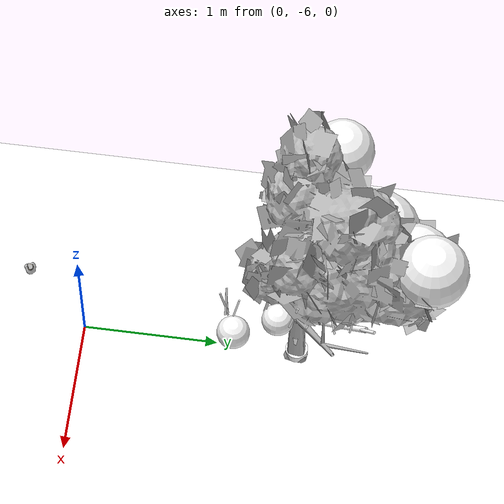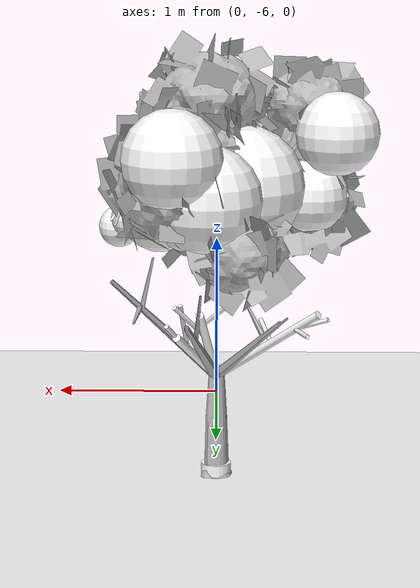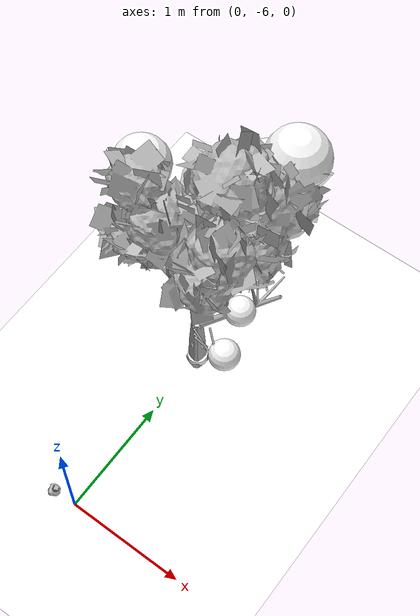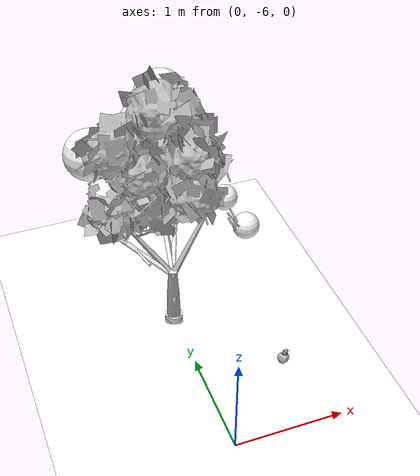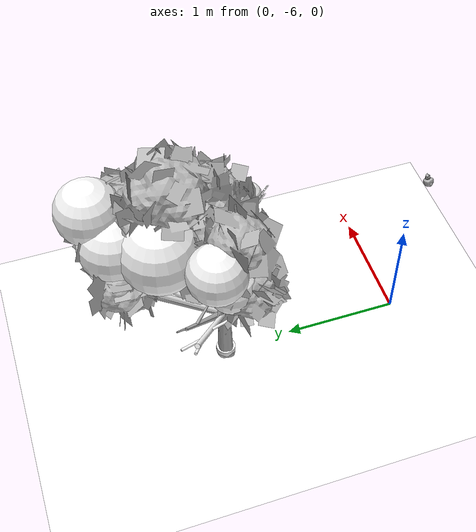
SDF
<sdf version="1.11">
 <world name="peach_orchard">
  <model name="ground">
   <static>true</static>
   <link name="link">
    <visual name="soil">
     <geometry><plane><normal>0 0 1</normal><size>32 22</size></plane></geometry>
     <material>
      <ambient>1 1 1 1</ambient>
      <diffuse>1 1 1 1</diffuse>
      <specular>0.1 0.1 0.1 1</specular>
      <pbr>
       <metal>
        <albedo_map>textures/soil_albedo.png</albedo_map>
        <normal_map type="tangent">textures/soil_normal.png</normal_map>
        <roughness>0.95</roughness>
        <metalness>0</metalness>
       </metal>
      </pbr>
     </material>
    </visual>
    <collision name="c_soil">
     <geometry><plane><normal>0 0 1</normal><size>32 22</size></plane></geometry>
    </collision>
   </link>
  </model>
  <model name="tree_r2_t1">
   <pose>0 -4.4 0 0 0 0</pose>
   <static>true</static>
   <link name="link">
    <visual name="tree_mesh">
     <pose>0 0 0 0 0 -0.182898</pose>
     <geometry>
      <mesh><uri>model://peach_sim/meshes/peach_tree_b.glb</uri><scale>1.07266 1.07266 1.07266</scale></mesh>
     </geometry>
    </visual>
    <visual name="trunk_0">
     <pose>0 0 0.170287 0 0 0</pose>
     <geometry><cylinder><radius>0.057545</radius><length>0.340573</length></cylinder></geometry>
     <material>
      <ambient>1 1 1 1</ambient>
      <diffuse>1 1 1 1</diffuse>
      <specular>0.1 0.1 0.1 1</specular>
      <pbr>
       <metal>
        <albedo_map>textures/bark_albedo.png</albedo_map>
        <normal_map type="tangent">textures/bark_normal.png</normal_map>
        <roughness>0.9</roughness>
        <metalness>0</metalness>
       </metal>
      </pbr>
     </material>
    </visual>
    <collision name="c_trunk_0">
     <pose>0 0 0.170287 0 0 0</pose>
     <geometry><cylinder><radius>0.057545</radius><length>0.340573</length></cylinder></geometry>
    </collision>
    <visual name="trunk_1">
     <pose>0 0 0.479898 0 0 0</pose>
     <geometry><cylinder><radius>0.0414324</radius><length>0.278651</length></cylinder></geometry>
     <material>
      <ambient>1 1 1 1</ambient>
      <diffuse>1 1 1 1</diffuse>
      <specular>0.1 0.1 0.1 1</specular>
      <pbr>
       <metal>
        <albedo_map>textures/bark_albedo.png</albedo_map>
        <normal_map type="tangent">textures/bark_normal.png</normal_map>
        <roughness>0.9</roughness>
        <metalness>0</metalness>
       </metal>
      </pbr>
     </material>
    </visual>
    <collision name="c_trunk_1">
     <pose>0 0 0.479898 0 0 0</pose>
     <geometry><cylinder><radius>0.0414324</radius><length>0.278651</length></cylinder></geometry>
    </collision>
    <visual name="root_flare">
     <pose>0 0 0.035 0 0 0</pose>
     <geometry><cylinder><radius>0.0834402</radius><length>0.07</length></cylinder></geometry>
     <material>
      <ambient>1 1 1 1</ambient>
      <diffuse>1 1 1 1</diffuse>
      <specular>0.1 0.1 0.1 1</specular>
      <pbr>
       <metal>
        <albedo_map>textures/bark_albedo.png</albedo_map>
        <normal_map type="tangent">textures/bark_normal.png</normal_map>
        <roughness>0.95</roughness>
        <metalness>0</metalness>
       </metal>
      </pbr>
     </material>
    </visual>
    <visual name="scaffold_0">
     <pose>0.0425916 0.338999 0.829581 0 0.920498 1.44581</pose>
     <geometry><cylinder><radius>0.022</radius><length>0.858556</length></cylinder></geometry>
     <material>
      <ambient>1 1 1 1</ambient>
      <diffuse>1 1 1 1</diffuse>
      <specular>0.1 0.1 0.1 1</specular>
      <pbr>
       <metal>
        <albedo_map>textures/bark_albedo.png</albedo_map>
        <normal_map type="tangent">textures/bark_normal.png</normal_map>
        <roughness>0.9</roughness>
        <metalness>0</metalness>
       </metal>
      </pbr>
     </material>
    </visual>
    <collision name="c_scaffold_0">
     <pose>0.0425916 0.338999 0.829581 0 0.920498 1.44581</pose>
     <geometry><cylinder><radius>0.022</radius><length>0.858556</length></cylinder></geometry>
    </collision>
    <visual name="branchlet_0_0">
     <pose>0.136265 0.513864 1.00876 0 0.826578 0.674602</pose>
     <geometry><cylinder><radius>0.012</radius><length>0.277514</length></cylinder></geometry>
     <material>
      <ambient>1 1 1 1</ambient>
      <diffuse>1 1 1 1</diffuse>
      <specular>0.1 0.1 0.1 1</specular>
      <pbr>
       <metal>
        <albedo_map>textures/bark_albedo.png</albedo_map>
        <normal_map type="tangent">textures/bark_normal.png</normal_map>
        <roughness>0.9</roughness>
        <metalness>0</metalness>
       </metal>
      </pbr>
     </material>
    </visual>
    <visual name="branchlet_0_1">
     <pose>-0.0124506 0.659524 1.09874 0 0.931263 2.34027</pose>
     <geometry><cylinder><radius>0.012</radius><length>0.30226</length></cylinder></geometry>
     <material>
      <ambient>1 1 1 1</ambient>
      <diffuse>1 1 1 1</diffuse>
      <specular>0.1 0.1 0.1 1</specular>
      <pbr>
       <metal>
        <albedo_map>textures/bark_albedo.png</albedo_map>
        <normal_map type="tangent">textures/bark_normal.png</normal_map>
        <roughness>0.9</roughness>
        <metalness>0</metalness>
       </metal>
      </pbr>
     </material>
    </visual>
    <visual name="scaffold_1">
     <pose>0.103659 0.256051 0.746721 0 1.00086 1.18613</pose>
     <geometry><cylinder><radius>0.022</radius><length>0.656197</length></cylinder></geometry>
     <material>
      <ambient>1 1 1 1</ambient>
      <diffuse>1 1 1 1</diffuse>
      <specular>0.1 0.1 0.1 1</specular>
      <pbr>
       <metal>
        <albedo_map>textures/bark_albedo.png</albedo_map>
        <normal_map type="tangent">textures/bark_normal.png</normal_map>
        <roughness>0.9</roughness>
        <metalness>0</metalness>
       </metal>
      </pbr>
     </material>
    </visual>
    <collision name="c_scaffold_1">
     <pose>0.103659 0.256051 0.746721 0 1.00086 1.18613</pose>
     <geometry><cylinder><radius>0.022</radius><length>0.656197</length></cylinder></geometry>
    </collision>
    <visual name="branchlet_1_0">
     <pose>0.216636 0.502195 0.933999 0 0.895356 1.03662</pose>
     <geometry><cylinder><radius>0.012</radius><length>0.21257</length></cylinder></geometry>
     <material>
      <ambient>1 1 1 1</ambient>
      <diffuse>1 1 1 1</diffuse>
      <specular>0.1 0.1 0.1 1</specular>
      <pbr>
       <metal>
        <albedo_map>textures/bark_albedo.png</albedo_map>
        <normal_map type="tangent">textures/bark_normal.png</normal_map>
        <roughness>0.9</roughness>
        <metalness>0</metalness>
       </metal>
      </pbr>
     </material>
    </visual>
    <visual name="branchlet_1_1">
     <pose>0.169725 0.439462 0.962168 0 0.474524 1.29603</pose>
     <geometry><cylinder><radius>0.012</radius><length>0.302796</length></cylinder></geometry>
     <material>
      <ambient>1 1 1 1</ambient>
      <diffuse>1 1 1 1</diffuse>
      <specular>0.1 0.1 0.1 1</specular>
      <pbr>
       <metal>
        <albedo_map>textures/bark_albedo.png</albedo_map>
        <normal_map type="tangent">textures/bark_normal.png</normal_map>
        <roughness>0.9</roughness>
        <metalness>0</metalness>
       </metal>
      </pbr>
     </material>
    </visual>
    <visual name="scaffold_2">
     <pose>-0.270267 0.187478 0.793004 0 0.974351 2.53512</pose>
     <geometry><cylinder><radius>0.022</radius><length>0.795142</length></cylinder></geometry>
     <material>
      <ambient>1 1 1 1</ambient>
      <diffuse>1 1 1 1</diffuse>
      <specular>0.1 0.1 0.1 1</specular>
      <pbr>
       <metal>
        <albedo_map>textures/bark_albedo.png</albedo_map>
        <normal_map type="tangent">textures/bark_normal.png</normal_map>
        <roughness>0.9</roughness>
        <metalness>0</metalness>
       </metal>
      </pbr>
     </material>
    </visual>
    <collision name="c_scaffold_2">
     <pose>-0.270267 0.187478 0.793004 0 0.974351 2.53512</pose>
     <geometry><cylinder><radius>0.022</radius><length>0.795142</length></cylinder></geometry>
    </collision>
    <visual name="branchlet_2_0">
     <pose>-0.270787 0.0496463 0.83948 0 1.40955 -1.41278</pose>
     <geometry><cylinder><radius>0.012</radius><length>0.318788</length></cylinder></geometry>
     <material>
      <ambient>1 1 1 1</ambient>
      <diffuse>1 1 1 1</diffuse>
      <specular>0.1 0.1 0.1 1</specular>
      <pbr>
       <metal>
        <albedo_map>textures/bark_albedo.png</albedo_map>
        <normal_map type="tangent">textures/bark_normal.png</normal_map>
        <roughness>0.9</roughness>
        <metalness>0</metalness>
       </metal>
      </pbr>
     </material>
    </visual>
    <visual name="branchlet_2_1">
     <pose>-0.449534 0.391661 0.921175 0 1.52547 1.85985</pose>
     <geometry><cylinder><radius>0.012</radius><length>0.210077</length></cylinder></geometry>
     <material>
      <ambient>1 1 1 1</ambient>
      <diffuse>1 1 1 1</diffuse>
      <specular>0.1 0.1 0.1 1</specular>
      <pbr>
       <metal>
        <albedo_map>textures/bark_albedo.png</albedo_map>
        <normal_map type="tangent">textures/bark_normal.png</normal_map>
        <roughness>0.9</roughness>
        <metalness>0</metalness>
       </metal>
      </pbr>
     </material>
    </visual>
    <visual name="branchlet_2_2">
     <pose>-0.507842 0.349707 0.958595 0 1.2063 2.55626</pose>
     <geometry><cylinder><radius>0.012</radius><length>0.214034</length></cylinder></geometry>
     <material>
      <ambient>1 1 1 1</ambient>
      <diffuse>1 1 1 1</diffuse>
      <specular>0.1 0.1 0.1 1</specular>
      <pbr>
       <metal>
        <albedo_map>textures/bark_albedo.png</albedo_map>
        <normal_map type="tangent">textures/bark_normal.png</normal_map>
        <roughness>0.9</roughness>
        <metalness>0</metalness>
       </metal>
      </pbr>
     </material>
    </visual>
    <visual name="canopy_0">
     <pose>0.286188 0.730087 1.63494 0 0 0</pose>
     <geometry><sphere><radius>0.194819</radius></sphere></geometry>
     <material>
      <ambient>1 1 1 1</ambient>
      <diffuse>1 1 1 1</diffuse>
      <specular>0.1 0.1 0.1 1</specular>
      <pbr>
       <metal>
        <albedo_map>textures/leaf_albedo.png</albedo_map>
        <normal_map type="tangent">textures/leaf_normal.png</normal_map>
        <roughness>0.85</roughness>
        <metalness>0</metalness>
       </metal>
      </pbr>
     </material>
    </visual>
    <collision name="c_canopy_0">
     <pose>0.286188 0.730087 1.63494 0 0 0</pose>
     <geometry><sphere><radius>0.194819</radius></sphere></geometry>
    </collision>
    <visual name="canopy_1">
     <pose>-0.137182 0.50841 1.73183 0 0 0</pose>
     <geometry><sphere><radius>0.318168</radius></sphere></geometry>
     <material>
      <ambient>1 1 1 1</ambient>
      <diffuse>1 1 1 1</diffuse>
      <specular>0.1 0.1 0.1 1</specular>
      <pbr>
       <metal>
        <albedo_map>textures/leaf_albedo.png</albedo_map>
        <normal_map type="tangent">textures/leaf_normal.png</normal_map>
        <roughness>0.85</roughness>
        <metalness>0</metalness>
       </metal>
      </pbr>
     </material>
    </visual>
    <collision name="c_canopy_1">
     <pose>-0.137182 0.50841 1.73183 0 0 0</pose>
     <geometry><sphere><radius>0.318168</radius></sphere></geometry>
    </collision>
    <visual name="canopy_2">
     <pose>-0.506457 0.0751825 1.60078 0 0 0</pose>
     <geometry><sphere><radius>0.200631</radius></sphere></geometry>
     <material>
      <ambient>1 1 1 1</ambient>
      <diffuse>1 1 1 1</diffuse>
      <specular>0.1 0.1 0.1 1</specular>
      <pbr>
       <metal>
        <albedo_map>textures/leaf_albedo.png</albedo_map>
        <normal_map type="tangent">textures/leaf_normal.png</normal_map>
        <roughness>0.85</roughness>
        <metalness>0</metalness>
       </metal>
      </pbr>
     </material>
    </visual>
    <collision name="c_canopy_2">
     <pose>-0.506457 0.0751825 1.60078 0 0 0</pose>
     <geometry><sphere><radius>0.200631</radius></sphere></geometry>
    </collision>
    <visual name="canopy_3">
     <pose>0.147283 0.792902 1.63411 0 0 0</pose>
     <geometry><sphere><radius>0.180071</radius></sphere></geometry>
     <material>
      <ambient>1 1 1 1</ambient>
      <diffuse>1 1 1 1</diffuse>
      <specular>0.1 0.1 0.1 1</specular>
      <pbr>
       <metal>
        <albedo_map>textures/leaf_albedo.png</albedo_map>
        <normal_map type="tangent">textures/leaf_normal.png</normal_map>
        <roughness>0.85</roughness>
        <metalness>0</metalness>
       </metal>
      </pbr>
     </material>
    </visual>
    <visual name="canopy_4">
     <pose>0.0470145 0.804629 1.7154 0 0 0</pose>
     <geometry><sphere><radius>0.280003</radius></sphere></geometry>
     <material>
      <ambient>1 1 1 1</ambient>
      <diffuse>1 1 1 1</diffuse>
      <specular>0.1 0.1 0.1 1</specular>
      <pbr>
       <metal>
        <albedo_map>textures/leaf_albedo.png</albedo_map>
        <normal_map type="tangent">textures/leaf_normal.png</normal_map>
        <roughness>0.85</roughness>
        <metalness>0</metalness>
       </metal>
      </pbr>
     </material>
    </visual>
    <visual name="canopy_5">
     <pose>-0.636681 0.215383 1.96 0 0 0</pose>
     <geometry><sphere><radius>0.22353</radius></sphere></geometry>
     <material>
      <ambient>1 1 1 1</ambient>
      <diffuse>1 1 1 1</diffuse>
      <specular>0.1 0.1 0.1 1</specular>
      <pbr>
       <metal>
        <albedo_map>textures/leaf_albedo.png</albedo_map>
        <normal_map type="tangent">textures/leaf_normal.png</normal_map>
        <roughness>0.85</roughness>
        <metalness>0</metalness>
       </metal>
      </pbr>
     </material>
    </visual>
    <visual name="canopy_6">
     <pose>0.22001 0.926387 1.94066 0 0 0</pose>
     <geometry><sphere><radius>0.25661</radius></sphere></geometry>
     <material>
      <ambient>1 1 1 1</ambient>
      <diffuse>1 1 1 1</diffuse>
      <specular>0.1 0.1 0.1 1</specular>
      <pbr>
       <metal>
        <albedo_map>textures/leaf_albedo.png</albedo_map>
        <normal_map type="tangent">textures/leaf_normal.png</normal_map>
        <roughness>0.85</roughness>
        <metalness>0</metalness>
       </metal>
      </pbr>
     </material>
    </visual>
    <visual name="canopy_7">
     <pose>0.188265 0.705098 1.78611 0 0 0</pose>
     <geometry><sphere><radius>0.194952</radius></sphere></geometry>
     <material>
      <ambient>1 1 1 1</ambient>
      <diffuse>1 1 1 1</diffuse>
      <specular>0.1 0.1 0.1 1</specular>
      <pbr>
       <metal>
        <albedo_map>textures/leaf_albedo.png</albedo_map>
        <normal_map type="tangent">textures/leaf_normal.png</normal_map>
        <roughness>0.85</roughness>
        <metalness>0</metalness>
       </metal>
      </pbr>
     </material>
    </visual>
    <visual name="foliage_0">
     <pose>0.464719 -0.094649 1.44031 0 0 0</pose>
     <geometry><sphere><radius>0.113757</radius></sphere></geometry>
     <material>
      <ambient>1 1 1 1</ambient>
      <diffuse>1 1 1 1</diffuse>
      <specular>0.1 0.1 0.1 1</specular>
      <pbr>
       <metal>
        <albedo_map>textures/leaf_albedo.png</albedo_map>
        <normal_map type="tangent">textures/leaf_normal.png</normal_map>
        <roughness>0.85</roughness>
        <metalness>0</metalness>
       </metal>
      </pbr>
     </material>
    </visual>
    <visual name="foliage_4">
     <pose>0.54722 -0.395447 1.33033 0 0 0</pose>
     <geometry><sphere><radius>0.116796</radius></sphere></geometry>
     <material>
      <ambient>1 1 1 1</ambient>
      <diffuse>1 1 1 1</diffuse>
      <specular>0.1 0.1 0.1 1</specular>
      <pbr>
       <metal>
        <albedo_map>textures/leaf_albedo.png</albedo_map>
        <normal_map type="tangent">textures/leaf_normal.png</normal_map>
        <roughness>0.85</roughness>
        <metalness>0</metalness>
       </metal>
      </pbr>
     </material>
    </visual>
    <visual name="foliage_8">
     <pose>0.150797 0.211542 1.39017 0 0 0</pose>
     <geometry><sphere><radius>0.0927448</radius></sphere></geometry>
     <material>
      <ambient>1 1 1 1</ambient>
      <diffuse>1 1 1 1</diffuse>
      <specular>0.1 0.1 0.1 1</specular>
      <pbr>
       <metal>
        <albedo_map>textures/leaf_albedo.png</albedo_map>
        <normal_map type="tangent">textures/leaf_normal.png</normal_map>
        <roughness>0.85</roughness>
        <metalness>0</metalness>
       </metal>
      </pbr>
     </material>
    </visual>
    <visual name="twig_0">
     <pose>0.526801 0.0215246 1.61952 0 0.364313 2.32415</pose>
     <geometry><cylinder><radius>0.007</radius><length>0.201046</length></cylinder></geometry>
     <material>
      <ambient>1 1 1 1</ambient>
      <diffuse>1 1 1 1</diffuse>
      <specular>0.1 0.1 0.1 1</specular>
      <pbr>
       <metal>
        <albedo_map>textures/bark_albedo.png</albedo_map>
        <normal_map type="tangent">textures/bark_normal.png</normal_map>
        <roughness>0.9</roughness>
        <metalness>0</metalness>
       </metal>
      </pbr>
     </material>
    </visual>
    <visual name="twig_1">
     <pose>0.496465 0.143144 1.61012 0 0.61913 2.62364</pose>
     <geometry><cylinder><radius>0.007</radius><length>0.205004</length></cylinder></geometry>
     <material>
      <ambient>1 1 1 1</ambient>
      <diffuse>1 1 1 1</diffuse>
      <specular>0.1 0.1 0.1 1</specular>
      <pbr>
       <metal>
        <albedo_map>textures/bark_albedo.png</albedo_map>
        <normal_map type="tangent">textures/bark_normal.png</normal_map>
        <roughness>0.9</roughness>
        <metalness>0</metalness>
       </metal>
      </pbr>
     </material>
    </visual>
    <visual name="twig_2">
     <pose>0.511202 0.290485 1.56577 0 0.711603 -2.72697</pose>
     <geometry><cylinder><radius>0.007</radius><length>0.152069</length></cylinder></geometry>
     <material>
      <ambient>1 1 1 1</ambient>
      <diffuse>1 1 1 1</diffuse>
      <specular>0.1 0.1 0.1 1</specular>
      <pbr>
       <metal>
        <albedo_map>textures/bark_albedo.png</albedo_map>
        <normal_map type="tangent">textures/bark_normal.png</normal_map>
        <roughness>0.9</roughness>
        <metalness>0</metalness>
       </metal>
      </pbr>
     </material>
    </visual>
    <visual name="twig_3">
     <pose>0.512291 0.419979 1.55295 0 0.373174 2.72859</pose>
     <geometry><cylinder><radius>0.007</radius><length>0.103391</length></cylinder></geometry>
     <material>
      <ambient>1 1 1 1</ambient>
      <diffuse>1 1 1 1</diffuse>
      <specular>0.1 0.1 0.1 1</specular>
      <pbr>
       <metal>
        <albedo_map>textures/bark_albedo.png</albedo_map>
        <normal_map type="tangent">textures/bark_normal.png</normal_map>
        <roughness>0.9</roughness>
        <metalness>0</metalness>
       </metal>
      </pbr>
     </material>
    </visual>
    <visual name="twig_4">
     <pose>0.438727 -0.393613 1.4514 0 0.474343 2.61727</pose>
     <geometry><cylinder><radius>0.007</radius><length>0.192007</length></cylinder></geometry>
     <material>
      <ambient>1 1 1 1</ambient>
      <diffuse>1 1 1 1</diffuse>
      <specular>0.1 0.1 0.1 1</specular>
      <pbr>
       <metal>
        <albedo_map>textures/bark_albedo.png</albedo_map>
        <normal_map type="tangent">textures/bark_normal.png</normal_map>
        <roughness>0.9</roughness>
        <metalness>0</metalness>
       </metal>
      </pbr>
     </material>
    </visual>
    <visual name="twig_5">
     <pose>0.408524 -0.47699 1.48311 0 0.42059 -2.24174</pose>
     <geometry><cylinder><radius>0.007</radius><length>0.196148</length></cylinder></geometry>
     <material>
      <ambient>1 1 1 1</ambient>
      <diffuse>1 1 1 1</diffuse>
      <specular>0.1 0.1 0.1 1</specular>
      <pbr>
       <metal>
        <albedo_map>textures/bark_albedo.png</albedo_map>
        <normal_map type="tangent">textures/bark_normal.png</normal_map>
        <roughness>0.9</roughness>
        <metalness>0</metalness>
       </metal>
      </pbr>
     </material>
    </visual>
    <visual name="twig_6">
     <pose>0.388808 -0.46003 1.44058 0 0.46345 -2.8718</pose>
     <geometry><cylinder><radius>0.007</radius><length>0.19441</length></cylinder></geometry>
     <material>
      <ambient>1 1 1 1</ambient>
      <diffuse>1 1 1 1</diffuse>
      <specular>0.1 0.1 0.1 1</specular>
      <pbr>
       <metal>
        <albedo_map>textures/bark_albedo.png</albedo_map>
        <normal_map type="tangent">textures/bark_normal.png</normal_map>
        <roughness>0.9</roughness>
        <metalness>0</metalness>
       </metal>
      </pbr>
     </material>
    </visual>
    <visual name="twig_7">
     <pose>0.396371 -0.465425 1.48946 0 0.537362 -3.11915</pose>
     <geometry><cylinder><radius>0.007</radius><length>0.218575</length></cylinder></geometry>
     <material>
      <ambient>1 1 1 1</ambient>
      <diffuse>1 1 1 1</diffuse>
      <specular>0.1 0.1 0.1 1</specular>
      <pbr>
       <metal>
        <albedo_map>textures/bark_albedo.png</albedo_map>
        <normal_map type="tangent">textures/bark_normal.png</normal_map>
        <roughness>0.9</roughness>
        <metalness>0</metalness>
       </metal>
      </pbr>
     </material>
    </visual>
    <visual name="twig_8">
     <pose>0.194106 0.243336 1.49218 0 0.438954 -2.93289</pose>
     <geometry><cylinder><radius>0.007</radius><length>0.12164</length></cylinder></geometry>
     <material>
      <ambient>1 1 1 1</ambient>
      <diffuse>1 1 1 1</diffuse>
      <specular>0.1 0.1 0.1 1</specular>
      <pbr>
       <metal>
        <albedo_map>textures/bark_albedo.png</albedo_map>
        <normal_map type="tangent">textures/bark_normal.png</normal_map>
        <roughness>0.9</roughness>
        <metalness>0</metalness>
       </metal>
      </pbr>
     </material>
    </visual>
    <visual name="twig_9">
     <pose>0.193297 0.0404533 1.53179 0 0.29041 2.63978</pose>
     <geometry><cylinder><radius>0.007</radius><length>0.195672</length></cylinder></geometry>
     <material>
      <ambient>1 1 1 1</ambient>
      <diffuse>1 1 1 1</diffuse>
      <specular>0.1 0.1 0.1 1</specular>
      <pbr>
       <metal>
        <albedo_map>textures/bark_albedo.png</albedo_map>
        <normal_map type="tangent">textures/bark_normal.png</normal_map>
        <roughness>0.9</roughness>
        <metalness>0</metalness>
       </metal>
      </pbr>
     </material>
    </visual>
    <visual name="twig_10">
     <pose>0.163599 -0.179437 1.46482 0 0.72306 -2.96463</pose>
     <geometry><cylinder><radius>0.007</radius><length>0.186991</length></cylinder></geometry>
     <material>
      <ambient>1 1 1 1</ambient>
      <diffuse>1 1 1 1</diffuse>
      <specular>0.1 0.1 0.1 1</specular>
      <pbr>
       <metal>
        <albedo_map>textures/bark_albedo.png</albedo_map>
        <normal_map type="tangent">textures/bark_normal.png</normal_map>
        <roughness>0.9</roughness>
        <metalness>0</metalness>
       </metal>
      </pbr>
     </material>
    </visual>
    <visual name="twig_11">
     <pose>0.20053 -0.3207 1.45401 0 0.297298 2.38007</pose>
     <geometry><cylinder><radius>0.007</radius><length>0.14363</length></cylinder></geometry>
     <material>
      <ambient>1 1 1 1</ambient>
      <diffuse>1 1 1 1</diffuse>
      <specular>0.1 0.1 0.1 1</specular>
      <pbr>
       <metal>
        <albedo_map>textures/bark_albedo.png</albedo_map>
        <normal_map type="tangent">textures/bark_normal.png</normal_map>
        <roughness>0.9</roughness>
        <metalness>0</metalness>
       </metal>
      </pbr>
     </material>
    </visual>
   </link>
  </model>
  <model name="peach_tree_r2_t0_04">
   <pose>0.22 -6.28459 1.28011 0 0.320563 0.419473</pose>
   <static>true</static>
   <link name="bag">
    <visual name="bag_mesh">
     <pose>0 0 0.0484974 0 0 0</pose>
     <geometry>
      <mesh><uri>model://peach_sim/meshes/bagged_peach.glb</uri><scale>1.01122 1.14961 1.10221</scale></mesh>
     </geometry>
    </visual>
    <visual name="body">
     <pose>0 0 0.0304974 0 0 0</pose>
     <geometry><ellipsoid><radii>0.0379207 0.0298897 0.0329371</radii></ellipsoid></geometry>
     <material>
      <ambient>1 1 1 1</ambient>
      <diffuse>1 1 1 1</diffuse>
      <specular>0.1 0.1 0.1 1</specular>
      <pbr>
       <metal>
        <albedo_map>textures/paper_bag_albedo.png</albedo_map>
        <normal_map type="tangent">textures/paper_bag_normal.png</normal_map>
        <roughness>0.72</roughness>
        <metalness>0</metalness>
       </metal>
      </pbr>
     </material>
    </visual>
    <visual name="bottom_fold">
     <pose>0 0 0.012 0 0 0.35</pose>
     <geometry><box><size>0.0587772 0.0343732 0.022</size></box></geometry>
     <material>
      <ambient>1 1 1 1</ambient>
      <diffuse>1 1 1 1</diffuse>
      <specular>0.1 0.1 0.1 1</specular>
      <pbr>
       <metal>
        <albedo_map>textures/paper_bag_albedo.png</albedo_map>
        <normal_map type="tangent">textures/paper_bag_normal.png</normal_map>
        <roughness>0.8</roughness>
        <metalness>0</metalness>
       </metal>
      </pbr>
     </material>
    </visual>
    <visual name="fruit">
     <pose>0 0 0.0206923 0 0 0</pose>
     <geometry><sphere><radius>0.02776</radius></sphere></geometry>
     <material>
      <ambient>1 1 1 1</ambient>
      <diffuse>1 1 1 1</diffuse>
      <specular>0.1 0.1 0.1 1</specular>
      <pbr>
       <metal>
        <albedo_map>textures/fruit_skin_albedo.png</albedo_map>
        <normal_map type="tangent">textures/fruit_skin_normal.png</normal_map>
        <roughness>0.55</roughness>
        <metalness>0</metalness>
       </metal>
      </pbr>
     </material>
    </visual>
    <visual name="neck">
     <pose>0 0 0.0699947 0 0 0</pose>
     <geometry><cylinder><radius>0.013</radius><length>0.018</length></cylinder></geometry>
     <material>
      <ambient>1 1 1 1</ambient>
      <diffuse>1 1 1 1</diffuse>
      <specular>0.1 0.1 0.1 1</specular>
      <pbr>
       <metal>
        <albedo_map>textures/paper_bag_albedo.png</albedo_map>
        <normal_map type="tangent">textures/paper_bag_normal.png</normal_map>
        <roughness>0.75</roughness>
        <metalness>0</metalness>
       </metal>
      </pbr>
     </material>
    </visual>
    <visual name="gather">
     <pose>0 0 0.0509947 0 0 0</pose>
     <geometry><cylinder><radius>0.019</radius><length>0.02</length></cylinder></geometry>
     <material>
      <ambient>1 1 1 1</ambient>
      <diffuse>1 1 1 1</diffuse>
      <specular>0.1 0.1 0.1 1</specular>
      <pbr>
       <metal>
        <albedo_map>textures/paper_bag_albedo.png</albedo_map>
        <normal_map type="tangent">textures/paper_bag_normal.png</normal_map>
        <roughness>0.8</roughness>
        <metalness>0</metalness>
       </metal>
      </pbr>
     </material>
    </visual>
    <visual name="inner_paper">
     <pose>0 0 0.0749947 0 0 0</pose>
     <geometry><cylinder><radius>0.01</radius><length>0.008</length></cylinder></geometry>
     <material>
      <ambient>0.180392 0.14902 0.133333 1</ambient>
      <diffuse>0.180392 0.14902 0.133333 1</diffuse>
      <specular>0.1 0.1 0.1 1</specular>
     </material>
    </visual>
    <visual name="wire_0">
     <pose>0 0 0.0649947 0 0 0</pose>
     <geometry><cylinder><radius>0.0205</radius><length>0.0035</length></cylinder></geometry>
     <material>
      <ambient>0.25 0.25 0.25 1</ambient>
      <diffuse>0.25 0.25 0.25 1</diffuse>
      <specular>0.1 0.1 0.1 1</specular>
     </material>
    </visual>
    <visual name="wire_1">
     <pose>0 0 0.0719947 0 0 0</pose>
     <geometry><cylinder><radius>0.0205</radius><length>0.0035</length></cylinder></geometry>
     <material>
      <ambient>0.25 0.25 0.25 1</ambient>
      <diffuse>0.25 0.25 0.25 1</diffuse>
      <specular>0.1 0.1 0.1 1</specular>
     </material>
    </visual>
    <visual name="wire_tail">
     <pose>0.01 0 0.0729947 0 0.521618 0</pose>
     <geometry><cylinder><radius>0.0012</radius><length>0.026</length></cylinder></geometry>
     <material>
      <ambient>0.25 0.25 0.25 1</ambient>
      <diffuse>0.25 0.25 0.25 1</diffuse>
      <specular>0.1 0.1 0.1 1</specular>
     </material>
    </visual>
    <collision name="c_body">
     <pose>0 0 0.0304974 0 0 0</pose>
     <geometry><cylinder><radius>0.0379207</radius><length>0.0609947</length></cylinder></geometry>
    </collision>
   </link>
  </model>
  <model name="peach_tree_r2_t1_08">
   <pose>0.22 -4.16685 1.36082 0 0.201104 1.6098</pose>
   <static>true</static>
   <link name="bag">
    <visual name="bag_mesh">
     <pose>0 0 0.0479391 0 0 0</pose>
     <geometry>
      <mesh><uri>model://peach_sim/meshes/bagged_peach.glb</uri><scale>0.924067 0.995914 1.08953</scale></mesh>
     </geometry>
    </visual>
    <visual name="body">
     <pose>0 0 0.0299391 0 0 0</pose>
     <geometry><ellipsoid><radii>0.0346525 0.0258938 0.0323343</radii></ellipsoid></geometry>
     <material>
      <ambient>1 1 1 1</ambient>
      <diffuse>1 1 1 1</diffuse>
      <specular>0.1 0.1 0.1 1</specular>
      <pbr>
       <metal>
        <albedo_map>textures/paper_bag_albedo.png</albedo_map>
        <normal_map type="tangent">textures/paper_bag_normal.png</normal_map>
        <roughness>0.72</roughness>
        <metalness>0</metalness>
       </metal>
      </pbr>
     </material>
    </visual>
    <visual name="bottom_fold">
     <pose>0 0 0.012 0 0 0.35</pose>
     <geometry><box><size>0.0537114 0.0297778 0.022</size></box></geometry>
     <material>
      <ambient>1 1 1 1</ambient>
      <diffuse>1 1 1 1</diffuse>
      <specular>0.1 0.1 0.1 1</specular>
      <pbr>
       <metal>
        <albedo_map>textures/paper_bag_albedo.png</albedo_map>
        <normal_map type="tangent">textures/paper_bag_normal.png</normal_map>
        <roughness>0.8</roughness>
        <metalness>0</metalness>
       </metal>
      </pbr>
     </material>
    </visual>
    <visual name="fruit">
     <pose>0 0 0.0213179 0 0 0</pose>
     <geometry><sphere><radius>0.0284106</radius></sphere></geometry>
     <material>
      <ambient>1 1 1 1</ambient>
      <diffuse>1 1 1 1</diffuse>
      <specular>0.1 0.1 0.1 1</specular>
      <pbr>
       <metal>
        <albedo_map>textures/fruit_skin_albedo.png</albedo_map>
        <normal_map type="tangent">textures/fruit_skin_normal.png</normal_map>
        <roughness>0.55</roughness>
        <metalness>0</metalness>
       </metal>
      </pbr>
     </material>
    </visual>
    <visual name="neck">
     <pose>0 0 0.0688782 0 0 0</pose>
     <geometry><cylinder><radius>0.013</radius><length>0.018</length></cylinder></geometry>
     <material>
      <ambient>1 1 1 1</ambient>
      <diffuse>1 1 1 1</diffuse>
      <specular>0.1 0.1 0.1 1</specular>
      <pbr>
       <metal>
        <albedo_map>textures/paper_bag_albedo.png</albedo_map>
        <normal_map type="tangent">textures/paper_bag_normal.png</normal_map>
        <roughness>0.75</roughness>
        <metalness>0</metalness>
       </metal>
      </pbr>
     </material>
    </visual>
    <visual name="gather">
     <pose>0 0 0.0498782 0 0 0</pose>
     <geometry><cylinder><radius>0.019</radius><length>0.02</length></cylinder></geometry>
     <material>
      <ambient>1 1 1 1</ambient>
      <diffuse>1 1 1 1</diffuse>
      <specular>0.1 0.1 0.1 1</specular>
      <pbr>
       <metal>
        <albedo_map>textures/paper_bag_albedo.png</albedo_map>
        <normal_map type="tangent">textures/paper_bag_normal.png</normal_map>
        <roughness>0.8</roughness>
        <metalness>0</metalness>
       </metal>
      </pbr>
     </material>
    </visual>
    <visual name="inner_paper">
     <pose>0 0 0.0738782 0 0 0</pose>
     <geometry><cylinder><radius>0.01</radius><length>0.008</length></cylinder></geometry>
     <material>
      <ambient>0.180392 0.14902 0.133333 1</ambient>
      <diffuse>0.180392 0.14902 0.133333 1</diffuse>
      <specular>0.1 0.1 0.1 1</specular>
     </material>
    </visual>
    <visual name="wire_0">
     <pose>0 0 0.0638782 0 0 0</pose>
     <geometry><cylinder><radius>0.0205</radius><length>0.0035</length></cylinder></geometry>
     <material>
      <ambient>0.25 0.25 0.25 1</ambient>
      <diffuse>0.25 0.25 0.25 1</diffuse>
      <specular>0.1 0.1 0.1 1</specular>
     </material>
    </visual>
    <visual name="wire_1">
     <pose>0 0 0.0708782 0 0 0</pose>
     <geometry><cylinder><radius>0.0205</radius><length>0.0035</length></cylinder></geometry>
     <material>
      <ambient>0.25 0.25 0.25 1</ambient>
      <diffuse>0.25 0.25 0.25 1</diffuse>
      <specular>0.1 0.1 0.1 1</specular>
     </material>
    </visual>
    <visual name="wire_tail">
     <pose>0.01 0 0.0718782 0 0.521618 0</pose>
     <geometry><cylinder><radius>0.0012</radius><length>0.026</length></cylinder></geometry>
     <material>
      <ambient>0.25 0.25 0.25 1</ambient>
      <diffuse>0.25 0.25 0.25 1</diffuse>
      <specular>0.1 0.1 0.1 1</specular>
     </material>
    </visual>
    <collision name="c_body">
     <pose>0 0 0.0299391 0 0 0</pose>
     <geometry><cylinder><radius>0.0346525</radius><length>0.0598782</length></cylinder></geometry>
    </collision>
   </link>
  </model>
 </world>
</sdf>
